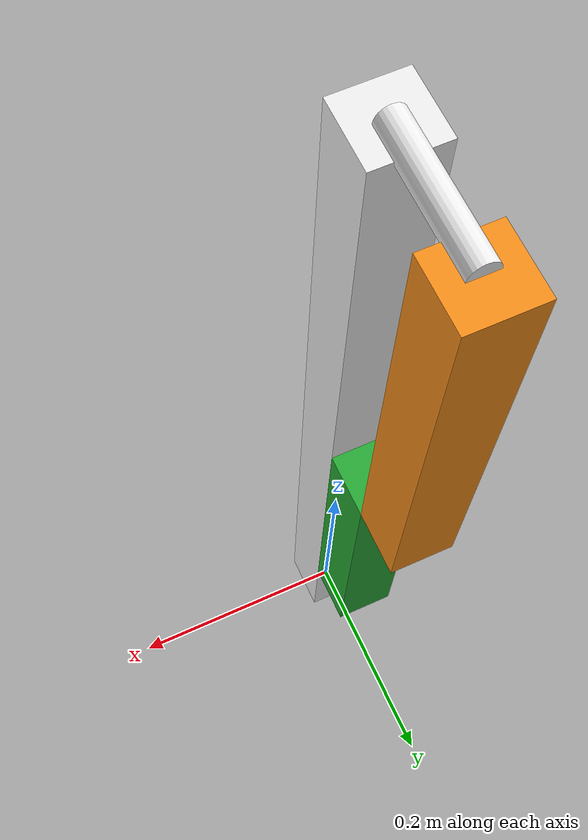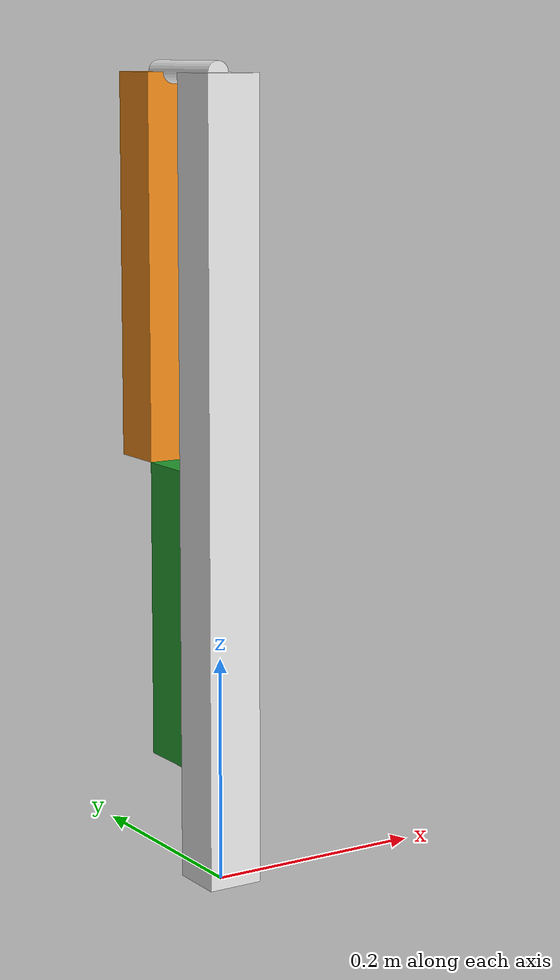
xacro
<?xml version="1.0"?>
<robot name="IB_robot" xmlns:xacro="http://www.ros.org/wiki/xacro">
  <!-- importing macro,constants,.gazebo files -->
  <!-- robot mechanical parameters -->
  <xacro:include filename="$(find simulate_robot)/urdf/system_constants.xacro"/>
  <xacro:include filename="$(find simulate_robot)/urdf/link_macro.xacro"/>
  <!-- Rviz material colors -->
  <xacro:include filename="$(find simulate_robot)/urdf/material_parameter.xacro"/>
  <!-- Gazebo custom tags,materials -->
  <xacro:include filename="$(find simulate_robot)/urdf/acrobat_robot_IB.gazebo"/>

  <!-- fixed base_link -->
  <link name="world"/>

  <joint name="world_fixed" type="fixed">
    <parent link="world"/>
    <child link="base"/>
  </joint>

  <!-- base_link -->
  <link name="base">
    <visual><!-- visual config -->
      <origin xyz="0 0 ${(height1+height2+0.10)/2}" rpy="0 0 0"/>
      <material name="white"/>
      <geometry>
        <box size="0.05 0.05 ${height1+height2+0.10}"/>
      </geometry>
    </visual>

    <collision><!-- Gazebo collision config -->
      <origin xyz="0 0 ${(height1+height2+10)/2}" rpy="0 0 0"/>
      <geometry>
        <box size="0.05 0.05 ${height1+height2+0.10}"/>
      </geometry>
    </collision>

    <inertial>
      <origin xyz="0 0 ${(height1+height2+10)/2}" rpy="0 0 0"/>
      <mass value="100"/>
      <inertia
        ixx="10" ixy="0" ixz="0"
        iyy="10" iyz="0"
        izz="10"/>
    </inertial>
  </link>

  <joint name="bar_conn" type="fixed">
    <parent link="base"/>
    <child link="bar"/>
  </joint>

  <!-- bar -->
  <link name="bar">
    <visual>
      <origin xyz="0.0 ${0.1/2} ${(height1+height2+0.10)}" rpy="${PI/2} 0.0 0.0"/>
      <material name="white"/>
      <geometry>
        <cylinder radius="0.01" length="0.10"/>
      </geometry>
    </visual>

    <collision>
      <origin xyz="0.0 ${0.1/2} ${(height1+height2+0.10)}" rpy="${PI/2} 0.0 0.0"/>
      <material name="white"/>
      <geometry>
        <cylinder radius="0.01" length="0.10"/>
      </geometry>
    </collision>

    <inertial>
      <mass value="100"/>
      <inertia
        ixx="10" ixy="0" ixz="0"
        iyy="10" iyz="0"
        izz="10"/>
        <origin xyz="0.0 ${0.1/2} ${(height1+height2+0.10)}" rpy="${PI/2} 0.0 0.0"/>
    </inertial>
  </link>

  <!-- 1st_link -->
  <xacro:link_macro
    suffix="1st_link" parent="bar" type="continuous" color="orange"
    width="${width1}" length="${length1}" height="${height1}"
    x_offset="0" y_offset="${width1+0.1/2}" z_offset="${height1+height2+0.10}"
    mass="${mass1}" comx="${comx1}" comy="${comy1}" comz="${comz1}"
    ixx="0.01" ixy="0" ixz="0"
    iyy="0.01" iyz="0"
    izz="0.0058"/>
  <!-- 2nd_link -->
  <xacro:link_macro
    suffix="2nd_link" parent="1st_link" type="revolute" color="green"
    width="${width2}" length="${length2}" height="${height2}"
    x_offset="0" y_offset="${width2}" z_offset="${height1}"
    mass="${mass1}" comx="${comx2}" comy="${comy2}" comz="${comz2}"
    ixx="0.01" ixy="0" ixz="0"
    iyy="0.01" iyz="0"
    izz="0.070"/>
</robot>

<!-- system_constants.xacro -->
<robot xmlns:xacro="http://www.ros.org/wiki/xacro">
  <!-- Robot constants parameter -->
  <!-- Y up,X front -->
  <!-- Link 1 -->
  <xacro:property name="mass1" value="0.710"/>
  <xacro:property name="length1" value="0.05"/>
  <xacro:property name="width1" value="0.05"/>
  <xacro:property name="height1" value="${0.323+0.015}"/> <!-- length + joint -->
  <xacro:property name="comx1" value="0.0"/>
  <xacro:property name="comy1" value="0.0"/>
  <xacro:property name="comz1" value="0.232"/>
  <!-- Link 2 -->
  <xacro:property name="mass2" value="0.351"/>
  <xacro:property name="length2" value="0.05"/>
  <xacro:property name="width2" value="0.05"/>
  <xacro:property name="height2" value="0.265"/>
  <xacro:property name="comx2" value="0.0"/>
  <xacro:property name="comy2" value="0.0"/>
  <xacro:property name="comz2" value="0.265"/>
  <!-- World constants parameter -->
  <xacro:property name="PI" value="3.1415926535897931"/>
</robot>

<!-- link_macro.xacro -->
<robot xmlns:xacro="http://www.ros.org/wiki/xacro">
  <xacro:macro name="link_macro"
    params="suffix parent type color
            width length height x_offset y_offset z_offset
            mass comx comy comz
            ixx ixy ixz
            iyy iyz
            izz">
    <!-- revolute joint(actuated) -->
    <xacro:if value="${type=='revolute'}">
      <joint name="${suffix}_joint" type="revolute">
        <parent link="${parent}"/>
        <child link="${suffix}"/>
        <origin xyz="${x_offset} ${y_offset} ${z_offset}" rpy="0 0 0"/>
        <limit upper="${PI/2}" lower="${-PI/2}" effort="100" velocity="100"/>
        <axis xyz="0 1 0"/>
        <dynamics damping="0.1"/>
      </joint>
    </xacro:if>
    <!-- continuous joint(passive) -->
    <xacro:if value="${type=='continuous'}">
        <joint name="${suffix}_joint" type="continuous">
          <parent link="${parent}"/>
          <child link="${suffix}"/>
          <origin xyz="${x_offset} ${y_offset} ${z_offset}" rpy="${PI} 0 0"/>
          <limit effort="0" velocity="100"/>
          <axis xyz="0 1 0"/>
          <dynamics damping="0.00001"/>
        </joint>
   </xacro:if>

    <link name="${suffix}">
      <!-- visual config -->
      <visual>
        <origin xyz="0 0 ${height/2}" rpy="0 0 0"/>
        <material name="${color}"/>
          <geometry>
            <box size="${width} ${length} ${height}"/>
          </geometry>
      </visual>
      <!-- Gazebo collision config -->
      <collision>
        <origin xyz="0 0 ${height/2}" rpy="0 0 0"/>
          <geometry>
            <box size="${width} ${length} ${height}"/>
          </geometry>
      </collision>
      <!-- inertial config -->
      <inertial>
        <origin xyz="${comx} ${comy} ${comz}" rpy="0 0 0"/>
        <mass value="${mass}"/>
        <inertia
          ixx="${ixx}" ixy="${ixy}" ixz="${ixz}"
          iyy="${iyy}" iyz="${iyz}"
          izz="${izz}"/>
      </inertial>
    </link>

    <transmission name="${suffix}_transmission">
      <type>transmission_interface/SimpleTransmission</type>
      <joint name="${suffix}_joint">
        <hardwareInterface>hardware_interface/EffortJointInterface</hardwareInterface>
      </joint>
      <actuator name="${suffix}_motor">
        <hardwareInterface>hardware_interface/EffortJointInterface</hardwareInterface>
        <mechanicalReduction>1</mechanicalReduction>
      </actuator>
    </transmission>
  </xacro:macro>
</robot>
